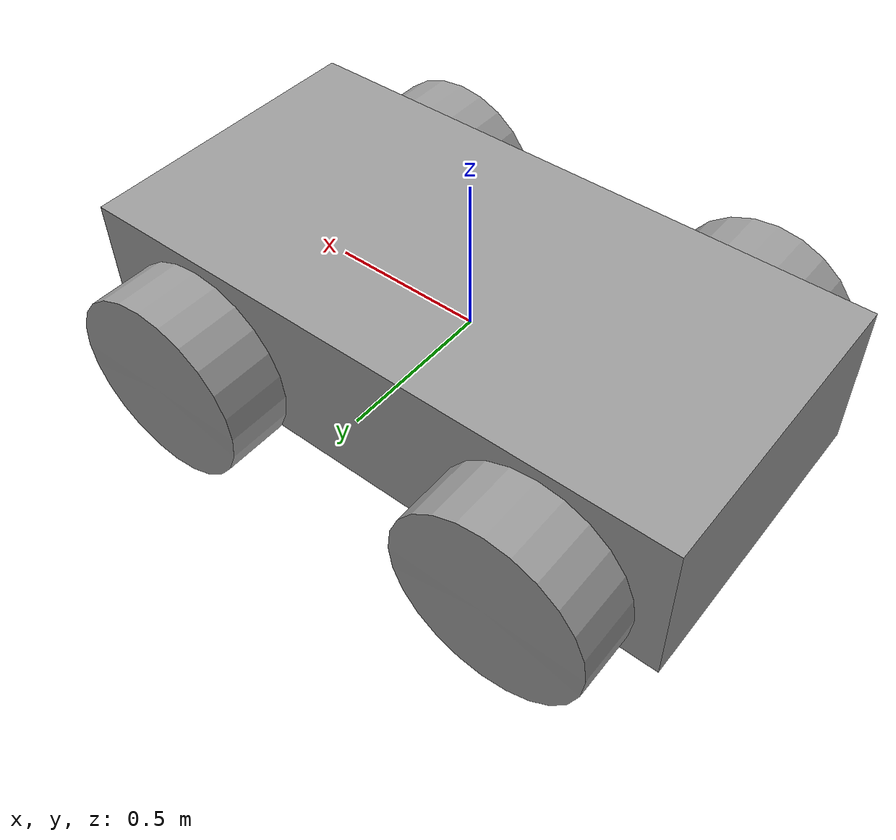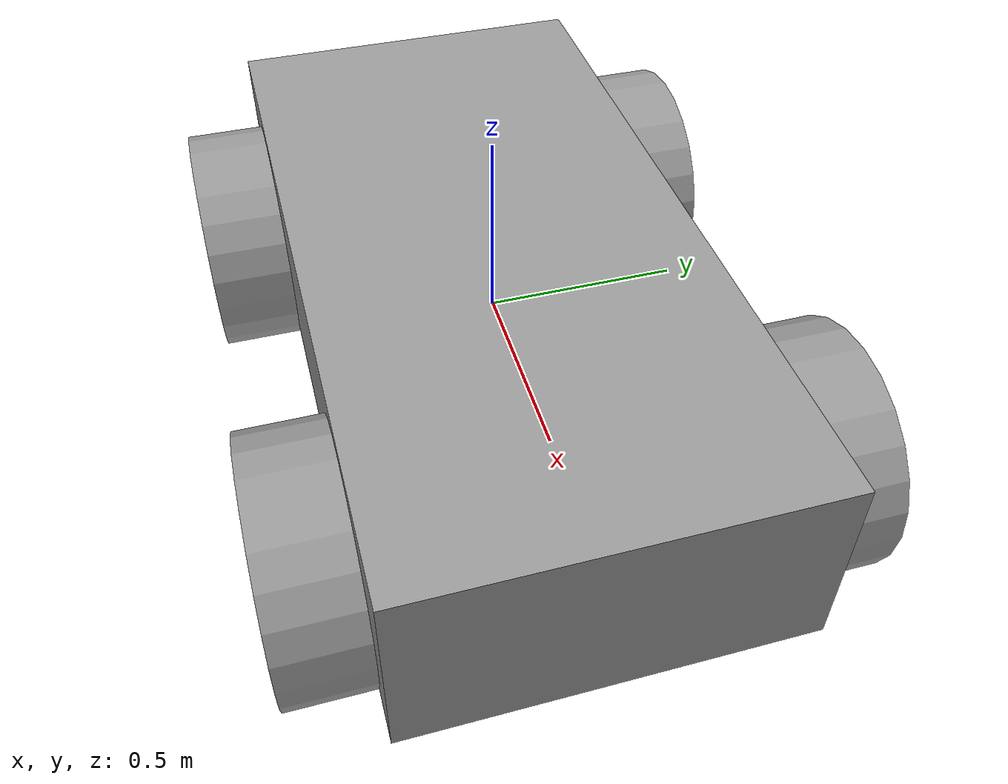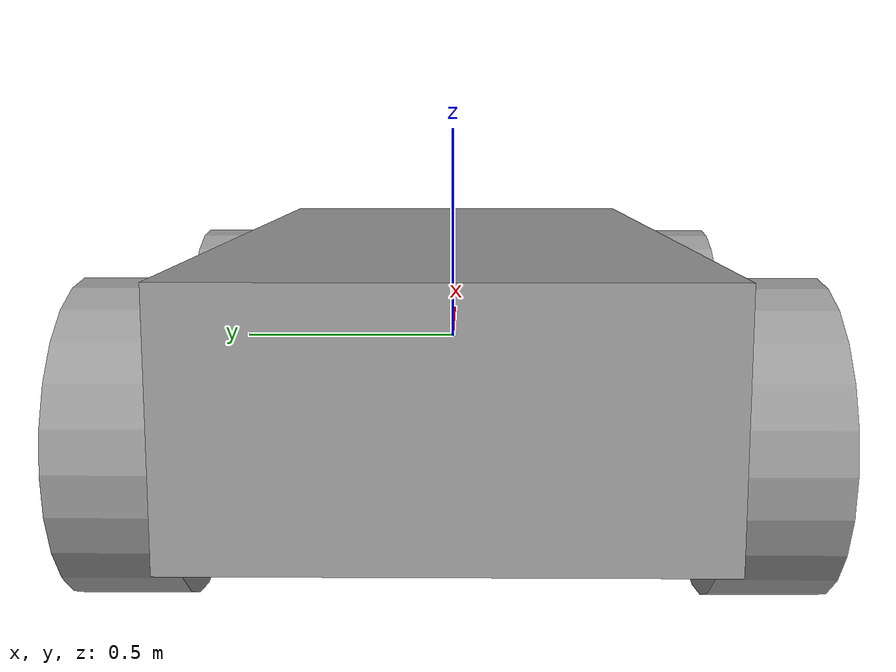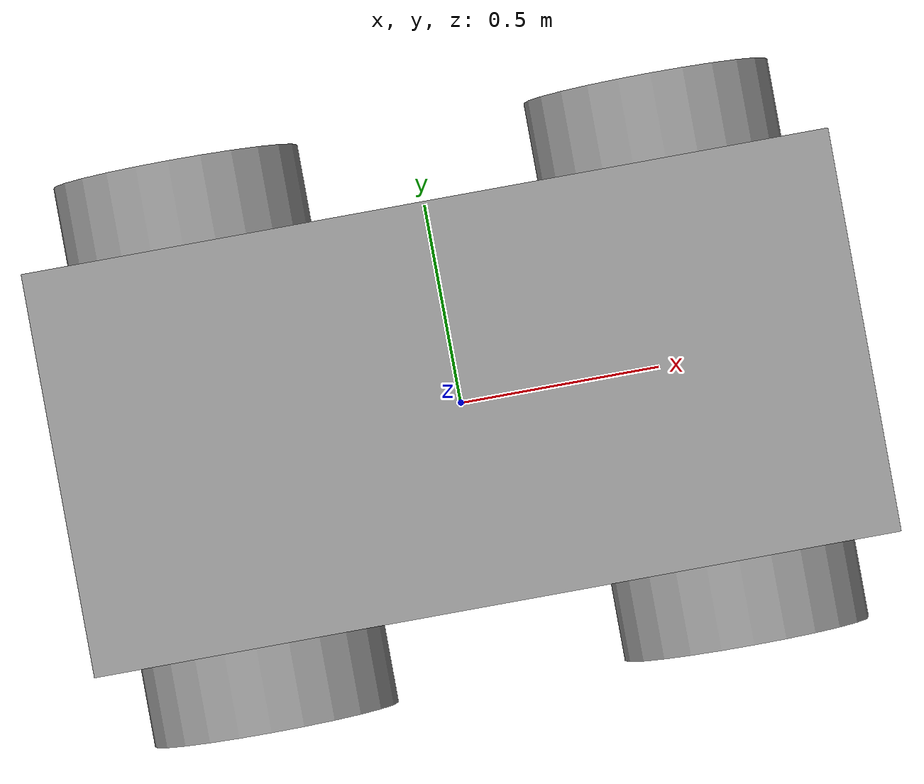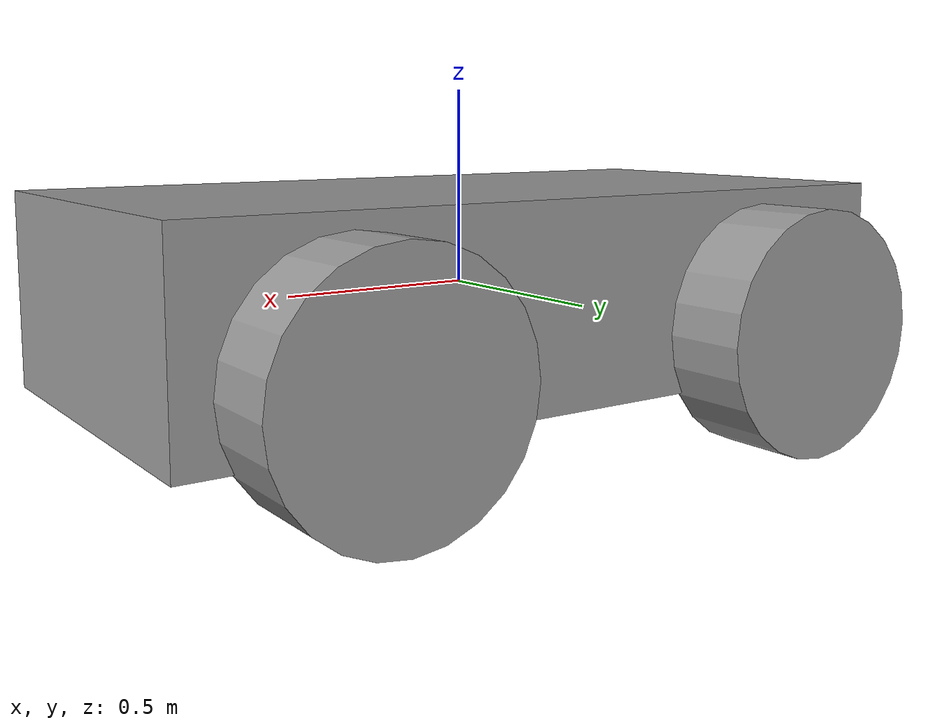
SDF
<?xml version='1.0'?>
<sdf version='1.6'>
  <model name='mybot'>
    <link name='base_link'>
      <pose frame=''>0 0 0 0 0 0</pose>
      <inertial>
        <mass>1.36848</mass>
        <inertia>
          <ixx>0.168113</ixx>
          <ixy>0</ixy>
          <ixz>0</ixz>
          <iyy>0.504485</iyy>
          <iyz>0</iyz>
          <izz>0.564452</izz>
        </inertia>
        <pose frame=''>0 0 0 0 -0 0</pose>
      </inertial>
      <gravity>1</gravity>
      <self_collide>0</self_collide>
      <kinematic>0</kinematic>
      <visual name='visual'>
        <pose frame=''>0 0 0 0 -0 0</pose>
        <geometry>
          <box>
            <size>2 1 0.5</size>
          </box>
        </geometry>
        <material>
          <lighting>1</lighting>
          <script>
            <uri>file://media/materials/scripts/gazebo.material</uri>
            <name>Gazebo/Grey</name>
          </script>
          <ambient>0.3 0.3 0.3 1</ambient>
          <diffuse>0.7 0.7 0.7 1</diffuse>
          <specular>0.01 0.01 0.01 1</specular>
          <emissive>0 0 0 1</emissive>
          <shader type='vertex'>
            <normal_map>__default__</normal_map>
          </shader>
        </material>
        <cast_shadows>1</cast_shadows>
        <transparency>0</transparency>
      </visual>
      <collision name='collision'>
        <laser_retro>0</laser_retro>
        <max_contacts>10</max_contacts>
        <pose frame=''>0 0 0 0 -0 0</pose>
        <geometry>
          <box>
            <size>1.98736 1 0.688594</size>
          </box>
        </geometry>
        <surface>
          <friction>
            <ode>
              <mu>1</mu>
              <mu2>1</mu2>
              <fdir1>0 0 0</fdir1>
              <slip1>0</slip1>
              <slip2>0</slip2>
            </ode>
            <torsional>
              <coefficient>1</coefficient>
              <patch_radius>0</patch_radius>
              <surface_radius>0</surface_radius>
              <use_patch_radius>1</use_patch_radius>
              <ode>
                <slip>0</slip>
              </ode>
            </torsional>
          </friction>
          <bounce>
            <restitution_coefficient>0</restitution_coefficient>
            <threshold>1e+06</threshold>
          </bounce>
          <contact>
            <collide_without_contact>0</collide_without_contact>
            <collide_without_contact_bitmask>1</collide_without_contact_bitmask>
            <collide_bitmask>1</collide_bitmask>
            <ode>
              <soft_cfm>0</soft_cfm>
              <soft_erp>0.2</soft_erp>
              <kp>1e+13</kp>
              <kd>1</kd>
              <max_vel>0.01</max_vel>
              <min_depth>0</min_depth>
            </ode>
            <bullet>
              <split_impulse>1</split_impulse>
              <split_impulse_penetration_threshold>-0.01</split_impulse_penetration_threshold>
              <soft_cfm>0</soft_cfm>
              <soft_erp>0.2</soft_erp>
              <kp>1e+13</kp>
              <kd>1</kd>
            </bullet>
          </contact>
        </surface>
      </collision>
    </link>
    <link name='wheel_1'>
      <pose frame=''>-0.6 -0.6 -0.1 1.57 0 0</pose>
      <inertial>
        <mass>0.0862894</mass>
        <inertia>
          <ixx>0.00244153</ixx>
          <ixy>0</ixy>
          <ixz>0</ixz>
          <iyy>0.00244153</iyy>
          <iyz>0</iyz>
          <izz>0.00416484</izz>
        </inertia>
        <pose frame=''>0 0 0 0 -0 0</pose>
      </inertial>
      <gravity>1</gravity>
      <self_collide>0</self_collide>
      <kinematic>0</kinematic>
      <visual name='visual'>
        <pose frame=''>0 0 0 0 -0 0</pose>
        <geometry>
          <cylinder>
            <radius>0.310699</radius>
            <length>0.223471</length>
          </cylinder>
        </geometry>
        <material>
          <lighting>1</lighting>
          <script>
            <uri>file://media/materials/scripts/gazebo.material</uri>
            <name>Gazebo/Grey</name>
          </script>
          <ambient>0.3 0.3 0.3 1</ambient>
          <diffuse>0.7 0.7 0.7 1</diffuse>
          <specular>0.01 0.01 0.01 1</specular>
          <emissive>0 0 0 1</emissive>
          <shader type='vertex'>
            <normal_map>__default__</normal_map>
          </shader>
        </material>
        <cast_shadows>1</cast_shadows>
        <transparency>0</transparency>
      </visual>
      <collision name='collision'>
        <laser_retro>0</laser_retro>
        <max_contacts>10</max_contacts>
        <pose frame=''>0 0 0 0 -0 0</pose>
        <geometry>
          <cylinder>
            <radius>0.310699</radius>
            <length>0.223471</length>
          </cylinder>
        </geometry>
        <surface>
          <friction>
            <ode>
              <mu>1</mu>
              <mu2>1</mu2>
              <fdir1>0 0 0</fdir1>
              <slip1>0</slip1>
              <slip2>0</slip2>
            </ode>
            <torsional>
              <coefficient>1</coefficient>
              <patch_radius>0</patch_radius>
              <surface_radius>0</surface_radius>
              <use_patch_radius>1</use_patch_radius>
              <ode>
                <slip>0</slip>
              </ode>
            </torsional>
          </friction>
          <bounce>
            <restitution_coefficient>0</restitution_coefficient>
            <threshold>1e+06</threshold>
          </bounce>
          <contact>
            <collide_without_contact>0</collide_without_contact>
            <collide_without_contact_bitmask>1</collide_without_contact_bitmask>
            <collide_bitmask>1</collide_bitmask>
            <ode>
              <soft_cfm>0</soft_cfm>
              <soft_erp>0.2</soft_erp>
              <kp>1e+13</kp>
              <kd>1</kd>
              <max_vel>0.01</max_vel>
              <min_depth>0</min_depth>
            </ode>
            <bullet>
              <split_impulse>1</split_impulse>
              <split_impulse_penetration_threshold>-0.01</split_impulse_penetration_threshold>
              <soft_cfm>0</soft_cfm>
              <soft_erp>0.2</soft_erp>
              <kp>1e+13</kp>
              <kd>1</kd>
            </bullet>
          </contact>
        </surface>
      </collision>
    </link>
    <link name='wheel_2'>
      <pose frame=''>-0.6 0.6 -0.1 1.57 -0 0</pose>
      <inertial>
        <mass>0.0862894</mass>
        <inertia>
          <ixx>0.00244153</ixx>
          <ixy>0</ixy>
          <ixz>0</ixz>
          <iyy>0.00244153</iyy>
          <iyz>0</iyz>
          <izz>0.00416484</izz>
        </inertia>
        <pose frame=''>0 0 0 0 -0 0</pose>
      </inertial>
      <visual name='visual'>
        <pose frame=''>0 0 0 0 -0 0</pose>
        <geometry>
          <cylinder>
            <radius>0.310699</radius>
            <length>0.223471</length>
          </cylinder>
        </geometry>
        <material>
          <lighting>1</lighting>
          <script>
            <uri>file://media/materials/scripts/gazebo.material</uri>
            <name>Gazebo/Grey</name>
          </script>
          <ambient>0.3 0.3 0.3 1</ambient>
          <diffuse>0.7 0.7 0.7 1</diffuse>
          <specular>0.01 0.01 0.01 1</specular>
          <emissive>0 0 0 1</emissive>
          <shader type='pixel'/>
        </material>
        <cast_shadows>1</cast_shadows>
        <transparency>0</transparency>
      </visual>
      <collision name='collision'>
        <laser_retro>0</laser_retro>
        <max_contacts>10</max_contacts>
        <pose frame=''>0 0 0 0 -0 0</pose>
        <geometry>
          <cylinder>
            <radius>0.310699</radius>
            <length>0.223471</length>
          </cylinder>
        </geometry>
        <surface>
          <friction>
            <ode>
              <mu>1</mu>
              <mu2>1</mu2>
              <fdir1>0 0 0</fdir1>
              <slip1>0</slip1>
              <slip2>0</slip2>
            </ode>
            <torsional>
              <coefficient>1</coefficient>
              <patch_radius>0</patch_radius>
              <surface_radius>0</surface_radius>
              <use_patch_radius>1</use_patch_radius>
              <ode>
                <slip>0</slip>
              </ode>
            </torsional>
          </friction>
          <bounce>
            <restitution_coefficient>0</restitution_coefficient>
            <threshold>1e+06</threshold>
          </bounce>
          <contact>
            <collide_without_contact>0</collide_without_contact>
            <collide_without_contact_bitmask>1</collide_without_contact_bitmask>
            <collide_bitmask>1</collide_bitmask>
            <ode>
              <soft_cfm>0</soft_cfm>
              <soft_erp>0.2</soft_erp>
              <kp>1e+13</kp>
              <kd>1</kd>
              <max_vel>0.01</max_vel>
              <min_depth>0</min_depth>
            </ode>
            <bullet>
              <split_impulse>1</split_impulse>
              <split_impulse_penetration_threshold>-0.01</split_impulse_penetration_threshold>
              <soft_cfm>0</soft_cfm>
              <soft_erp>0.2</soft_erp>
              <kp>1e+13</kp>
              <kd>1</kd>
            </bullet>
          </contact>
        </surface>
      </collision>
    </link>
    <link name='link_1_clone_0'>
      <pose frame=''>0.6 0.6 -0.1 1.57 -0 0</pose>
      <inertial>
        <mass>0.0862894</mass>
        <inertia>
          <ixx>0.00244153</ixx>
          <ixy>0</ixy>
          <ixz>0</ixz>
          <iyy>0.00244153</iyy>
          <iyz>0</iyz>
          <izz>0.00416484</izz>
        </inertia>
        <pose frame=''>0 0 0 0 -0 0</pose>
      </inertial>
      <gravity>1</gravity>
      <self_collide>0</self_collide>
      <kinematic>0</kinematic>
      <visual name='visual'>
        <pose frame=''>0 0 0 0 -0 0</pose>
        <geometry>
          <cylinder>
            <radius>0.310699</radius>
            <length>0.223471</length>
          </cylinder>
        </geometry>
        <material>
          <lighting>1</lighting>
          <script>
            <uri>file://media/materials/scripts/gazebo.material</uri>
            <name>Gazebo/Grey</name>
          </script>
          <ambient>0.3 0.3 0.3 1</ambient>
          <diffuse>0.7 0.7 0.7 1</diffuse>
          <specular>0.01 0.01 0.01 1</specular>
          <emissive>0 0 0 1</emissive>
          <shader type='vertex'>
            <normal_map>__default__</normal_map>
          </shader>
        </material>
        <cast_shadows>1</cast_shadows>
        <transparency>0</transparency>
      </visual>
      <collision name='collision'>
        <laser_retro>0</laser_retro>
        <max_contacts>10</max_contacts>
        <pose frame=''>0 0 0 0 -0 0</pose>
        <geometry>
          <cylinder>
            <radius>0.310699</radius>
            <length>0.223471</length>
          </cylinder>
        </geometry>
        <surface>
          <friction>
            <ode>
              <mu>1</mu>
              <mu2>1</mu2>
              <fdir1>0 0 0</fdir1>
              <slip1>0</slip1>
              <slip2>0</slip2>
            </ode>
            <torsional>
              <coefficient>1</coefficient>
              <patch_radius>0</patch_radius>
              <surface_radius>0</surface_radius>
              <use_patch_radius>1</use_patch_radius>
              <ode>
                <slip>0</slip>
              </ode>
            </torsional>
          </friction>
          <bounce>
            <restitution_coefficient>0</restitution_coefficient>
            <threshold>1e+06</threshold>
          </bounce>
          <contact>
            <collide_without_contact>0</collide_without_contact>
            <collide_without_contact_bitmask>1</collide_without_contact_bitmask>
            <collide_bitmask>1</collide_bitmask>
            <ode>
              <soft_cfm>0</soft_cfm>
              <soft_erp>0.2</soft_erp>
              <kp>1e+13</kp>
              <kd>1</kd>
              <max_vel>0.01</max_vel>
              <min_depth>0</min_depth>
            </ode>
            <bullet>
              <split_impulse>1</split_impulse>
              <split_impulse_penetration_threshold>-0.01</split_impulse_penetration_threshold>
              <soft_cfm>0</soft_cfm>
              <soft_erp>0.2</soft_erp>
              <kp>1e+13</kp>
              <kd>1</kd>
            </bullet>
          </contact>
        </surface>
      </collision>
    </link>
    <link name='link_1_clone_1'>
      <pose frame=''>0.6 -0.6 -0.1 1.57 -0 0</pose>
      <inertial>
        <mass>0.0862894</mass>
        <inertia>
          <ixx>0.00244153</ixx>
          <ixy>0</ixy>
          <ixz>0</ixz>
          <iyy>0.00244153</iyy>
          <iyz>0</iyz>
          <izz>0.00416484</izz>
        </inertia>
        <pose frame=''>0 0 0 0 -0 0</pose>
      </inertial>
      <gravity>1</gravity>
      <self_collide>0</self_collide>
      <kinematic>0</kinematic>
      <visual name='visual'>
        <pose frame=''>0 0 0 0 -0 0</pose>
        <geometry>
          <cylinder>
            <radius>0.310699</radius>
            <length>0.223471</length>
          </cylinder>
        </geometry>
        <material>
          <lighting>1</lighting>
          <script>
            <uri>file://media/materials/scripts/gazebo.material</uri>
            <name>Gazebo/Grey</name>
          </script>
          <ambient>0.3 0.3 0.3 1</ambient>
          <diffuse>0.7 0.7 0.7 1</diffuse>
          <specular>0.01 0.01 0.01 1</specular>
          <emissive>0 0 0 1</emissive>
          <shader type='vertex'>
            <normal_map>__default__</normal_map>
          </shader>
        </material>
        <cast_shadows>1</cast_shadows>
        <transparency>0</transparency>
      </visual>
      <collision name='collision'>
        <laser_retro>0</laser_retro>
        <max_contacts>10</max_contacts>
        <pose frame=''>0 0 0 0 -0 0</pose>
        <geometry>
          <cylinder>
            <radius>0.310699</radius>
            <length>0.223471</length>
          </cylinder>
        </geometry>
        <surface>
          <friction>
            <ode>
              <mu>1</mu>
              <mu2>1</mu2>
              <fdir1>0 0 0</fdir1>
              <slip1>0</slip1>
              <slip2>0</slip2>
            </ode>
            <torsional>
              <coefficient>1</coefficient>
              <patch_radius>0</patch_radius>
              <surface_radius>0</surface_radius>
              <use_patch_radius>1</use_patch_radius>
              <ode>
                <slip>0</slip>
              </ode>
            </torsional>
          </friction>
          <bounce>
            <restitution_coefficient>0</restitution_coefficient>
            <threshold>1e+06</threshold>
          </bounce>
          <contact>
            <collide_without_contact>0</collide_without_contact>
            <collide_without_contact_bitmask>1</collide_without_contact_bitmask>
            <collide_bitmask>1</collide_bitmask>
            <ode>
              <soft_cfm>0</soft_cfm>
              <soft_erp>0.2</soft_erp>
              <kp>1e+13</kp>
              <kd>1</kd>
              <max_vel>0.01</max_vel>
              <min_depth>0</min_depth>
            </ode>
            <bullet>
              <split_impulse>1</split_impulse>
              <split_impulse_penetration_threshold>-0.01</split_impulse_penetration_threshold>
              <soft_cfm>0</soft_cfm>
              <soft_erp>0.2</soft_erp>
              <kp>1e+13</kp>
              <kd>1</kd>
            </bullet>
          </contact>
        </surface>
      </collision>
    </link>
    <joint name='link_0_JOINT_0' type='revolute'>
      <parent>base_link</parent>
      <child>wheel_1</child>
      <pose frame=''>0 0 0 0 -0 0</pose>
      <axis>
        <xyz>0 0 1</xyz>
        <use_parent_model_frame>0</use_parent_model_frame>
        <limit>
          <lower>-1.79769e+308</lower>
          <upper>1.79769e+308</upper>
          <effort>-1</effort>
          <velocity>-1</velocity>
        </limit>
        <dynamics>
          <spring_reference>0</spring_reference>
          <spring_stiffness>0</spring_stiffness>
          <damping>0</damping>
        </dynamics>
      </axis>
      <physics>
        <ode>
          <limit>
            <cfm>0</cfm>
            <erp>0.2</erp>
          </limit>
          <suspension>
            <cfm>0</cfm>
            <erp>0.2</erp>
          </suspension>
        </ode>
      </physics>
    </joint>
    <joint name='link_0_JOINT_1' type='revolute'>
      <parent>base_link</parent>
      <child>wheel_2</child>
      <pose frame=''>0 0 0 0 -0 0</pose>
      <axis>
        <xyz>-0 -0 -1</xyz>
        <use_parent_model_frame>0</use_parent_model_frame>
        <limit>
          <lower>-1.79769e+308</lower>
          <upper>1.79769e+308</upper>
          <effort>-1</effort>
          <velocity>-1</velocity>
        </limit>
        <dynamics>
          <spring_reference>0</spring_reference>
          <spring_stiffness>0</spring_stiffness>
          <damping>0</damping>
        </dynamics>
      </axis>
      <physics>
        <ode>
          <limit>
            <cfm>0</cfm>
            <erp>0.2</erp>
          </limit>
          <suspension>
            <cfm>0</cfm>
            <erp>0.2</erp>
          </suspension>
        </ode>
      </physics>
    </joint>
    <joint name='link_0_JOINT_2' type='revolute'>
      <parent>base_link</parent>
      <child>wheel_3</child>
      <pose frame=''>0 0 0 0 -0 0</pose>
      <axis>
        <xyz>-0 -0 -1</xyz>
        <use_parent_model_frame>0</use_parent_model_frame>
        <limit>
          <lower>-1.79769e+308</lower>
          <upper>1.79769e+308</upper>
          <effort>-1</effort>
          <velocity>-1</velocity>
        </limit>
        <dynamics>
          <spring_reference>0</spring_reference>
          <spring_stiffness>0</spring_stiffness>
          <damping>0</damping>
        </dynamics>
      </axis>
      <physics>
        <ode>
          <limit>
            <cfm>0</cfm>
            <erp>0.2</erp>
          </limit>
          <suspension>
            <cfm>0</cfm>
            <erp>0.2</erp>
          </suspension>
        </ode>
      </physics>
    </joint>
    <joint name='link_0_JOINT_3' type='revolute'>
      <parent>base_link</parent>
      <child>wheel_4</child>
      <pose frame=''>0 0 0 0 -0 0</pose>
      <axis>
        <xyz>0 0 1</xyz>
        <use_parent_model_frame>0</use_parent_model_frame>
        <limit>
          <lower>-1.79769e+308</lower>
          <upper>1.79769e+308</upper>
          <effort>-1</effort>
          <velocity>-1</velocity>
        </limit>
        <dynamics>
          <spring_reference>0</spring_reference>
          <spring_stiffness>0</spring_stiffness>
          <damping>0</damping>
        </dynamics>
      </axis>
      <physics>
        <ode>
          <limit>
            <cfm>0</cfm>
            <erp>0.2</erp>
          </limit>
          <suspension>
            <cfm>0</cfm>
            <erp>0.2</erp>
          </suspension>
        </ode>
      </physics>
    </joint>
    <static>0</static>
    <allow_auto_disable>1</allow_auto_disable>
  </model>
</sdf>
